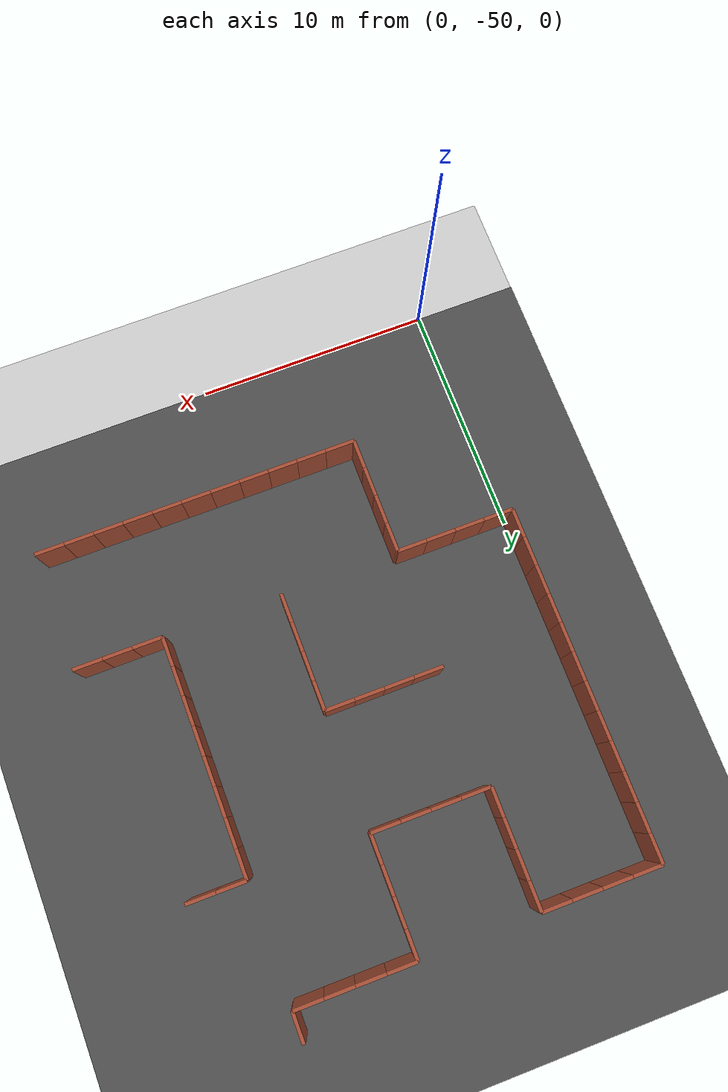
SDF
<sdf version="1.6">
 <world name="default">
  <model name="ground_plane">
   <static>1</static>
   <link name="link">
    <collision name="collision">
     <geometry><plane><normal>0 0 1</normal><size>100 100</size></plane></geometry>
     <surface><friction><ode><mu>100</mu><mu2>50</mu2></ode></friction></surface>
    </collision>
    <visual name="visual">
     <cast_shadows>0</cast_shadows>
     <geometry><plane><normal>0 0 1</normal><size>100 100</size></plane></geometry>
     <material>
      <script><uri>file://media/materials/scripts/gazebo.material</uri><name>Gazebo/Grey</name></script>
     </material>
    </visual>
   </link>
  </model>
  <model name="asphalt_plane">
   <static>1</static>
   <link name="link">
    <collision name="collision"><geometry><box><size>100 100 0.1</size></box></geometry></collision>
    <visual name="visual">
     <cast_shadows>0</cast_shadows>
     <geometry><box><size>100 100 0.1</size></box></geometry>
     <material>
      <script>
       <uri>model://asphalt_plane/materials/scripts</uri>
       <uri>model://asphalt_plane/materials/textures</uri>
       <name>vrc/asphalt</name>
      </script>
     </material>
    </visual>
   </link>
  </model>
  <model name="brick_wall_20_4_vertical1">
   <pose>0.625 -40 0 0 -0 0</pose>
   <link name="Wall_0">
    <collision name="Wall_0_Collision">
     <geometry><box><size>1.25 0.15 2</size></box></geometry>
     <pose>0 0 1 0 -0 0</pose>
    </collision>
    <visual name="Wall_0_Visual">
     <pose>0 0 1 0 -0 0</pose>
     <geometry><box><size>1.25 0.15 2</size></box></geometry>
     <material>
      <script><uri>file://media/materials/scripts/gazebo.material</uri><name>Gazebo/Bricks</name></script>
      <ambient>1 1 1 1</ambient>
     </material>
     <meta><layer>0</layer></meta>
    </visual>
   </link>
   <static>1</static>
  </model>
  <model name="brick_wall_20_4_horizontal1">
   <pose>0 -39.375 0 0 -0 1.5708</pose>
   <link name="Wall_0">
    <collision name="Wall_0_Collision">
     <geometry><box><size>1.25 0.15 2</size></box></geometry>
     <pose>0 0 1 0 -0 0</pose>
    </collision>
    <visual name="Wall_0_Visual">
     <pose>0 0 1 0 -0 0</pose>
     <geometry><box><size>1.25 0.15 2</size></box></geometry>
     <material>
      <script><uri>file://media/materials/scripts/gazebo.material</uri><name>Gazebo/Bricks</name></script>
      <ambient>1 1 1 1</ambient>
     </material>
     <meta><layer>0</layer></meta>
    </visual>
   </link>
   <static>1</static>
  </model>
  <model name="brick_wall_20_5_horizontal1">
   <pose>0 -36.875 0 0 -0 1.5708</pose>
   <link name="Wall_0">
    <collision name="Wall_0_Collision">
     <geometry><box><size>1.25 0.15 2</size></box></geometry>
     <pose>0 0 1 0 -0 0</pose>
    </collision>
    <visual name="Wall_0_Visual">
     <pose>0 0 1 0 -0 0</pose>
     <geometry><box><size>1.25 0.15 2</size></box></geometry>
     <material>
      <script><uri>file://media/materials/scripts/gazebo.material</uri><name>Gazebo/Bricks</name></script>
      <ambient>1 1 1 1</ambient>
     </material>
     <meta><layer>0</layer></meta>
    </visual>
   </link>
   <static>1</static>
  </model>
  <model name="brick_wall_20_5_horizontal2">
   <pose>0 -38.125 0 0 -0 1.5708</pose>
   <link name="Wall_0">
    <collision name="Wall_0_Collision">
     <geometry><box><size>1.25 0.15 2</size></box></geometry>
     <pose>0 0 1 0 -0 0</pose>
    </collision>
    <visual name="Wall_0_Visual">
     <pose>0 0 1 0 -0 0</pose>
     <geometry><box><size>1.25 0.15 2</size></box></geometry>
     <material>
      <script><uri>file://media/materials/scripts/gazebo.material</uri><name>Gazebo/Bricks</name></script>
      <ambient>1 1 1 1</ambient>
     </material>
     <meta><layer>0</layer></meta>
    </visual>
   </link>
   <static>1</static>
  </model>
  <model name="brick_wall_20_6_horizontal1">
   <pose>0 -34.375 0 0 -0 1.5708</pose>
   <link name="Wall_0">
    <collision name="Wall_0_Collision">
     <geometry><box><size>1.25 0.15 2</size></box></geometry>
     <pose>0 0 1 0 -0 0</pose>
    </collision>
    <visual name="Wall_0_Visual">
     <pose>0 0 1 0 -0 0</pose>
     <geometry><box><size>1.25 0.15 2</size></box></geometry>
     <material>
      <script><uri>file://media/materials/scripts/gazebo.material</uri><name>Gazebo/Bricks</name></script>
      <ambient>1 1 1 1</ambient>
     </material>
     <meta><layer>0</layer></meta>
    </visual>
   </link>
   <static>1</static>
  </model>
  <model name="brick_wall_20_6_horizontal2">
   <pose>0 -35.625 0 0 -0 1.5708</pose>
   <link name="Wall_0">
    <collision name="Wall_0_Collision">
     <geometry><box><size>1.25 0.15 2</size></box></geometry>
     <pose>0 0 1 0 -0 0</pose>
    </collision>
    <visual name="Wall_0_Visual">
     <pose>0 0 1 0 -0 0</pose>
     <geometry><box><size>1.25 0.15 2</size></box></geometry>
     <material>
      <script><uri>file://media/materials/scripts/gazebo.material</uri><name>Gazebo/Bricks</name></script>
      <ambient>1 1 1 1</ambient>
     </material>
     <meta><layer>0</layer></meta>
    </visual>
   </link>
   <static>1</static>
  </model>
  <model name="brick_wall_20_7_horizontal1">
   <pose>0 -31.875 0 0 -0 1.5708</pose>
   <link name="Wall_0">
    <collision name="Wall_0_Collision">
     <geometry><box><size>1.25 0.15 2</size></box></geometry>
     <pose>0 0 1 0 -0 0</pose>
    </collision>
    <visual name="Wall_0_Visual">
     <pose>0 0 1 0 -0 0</pose>
     <geometry><box><size>1.25 0.15 2</size></box></geometry>
     <material>
      <script><uri>file://media/materials/scripts/gazebo.material</uri><name>Gazebo/Bricks</name></script>
      <ambient>1 1 1 1</ambient>
     </material>
     <meta><layer>0</layer></meta>
    </visual>
   </link>
   <static>1</static>
  </model>
  <model name="brick_wall_20_7_horizontal2">
   <pose>0 -33.125 0 0 -0 1.5708</pose>
   <link name="Wall_0">
    <collision name="Wall_0_Collision">
     <geometry><box><size>1.25 0.15 2</size></box></geometry>
     <pose>0 0 1 0 -0 0</pose>
    </collision>
    <visual name="Wall_0_Visual">
     <pose>0 0 1 0 -0 0</pose>
     <geometry><box><size>1.25 0.15 2</size></box></geometry>
     <material>
      <script><uri>file://media/materials/scripts/gazebo.material</uri><name>Gazebo/Bricks</name></script>
      <ambient>1 1 1 1</ambient>
     </material>
     <meta><layer>0</layer></meta>
    </visual>
   </link>
   <static>1</static>
  </model>
  <model name="brick_wall_20_8_horizontal1">
   <pose>0 -29.375 0 0 -0 1.5708</pose>
   <link name="Wall_0">
    <collision name="Wall_0_Collision">
     <geometry><box><size>1.25 0.15 2</size></box></geometry>
     <pose>0 0 1 0 -0 0</pose>
    </collision>
    <visual name="Wall_0_Visual">
     <pose>0 0 1 0 -0 0</pose>
     <geometry><box><size>1.25 0.15 2</size></box></geometry>
     <material>
      <script><uri>file://media/materials/scripts/gazebo.material</uri><name>Gazebo/Bricks</name></script>
      <ambient>1 1 1 1</ambient>
     </material>
     <meta><layer>0</layer></meta>
    </visual>
   </link>
   <static>1</static>
  </model>
  <model name="brick_wall_20_8_horizontal2">
   <pose>0 -30.625 0 0 -0 1.5708</pose>
   <link name="Wall_0">
    <collision name="Wall_0_Collision">
     <geometry><box><size>1.25 0.15 2</size></box></geometry>
     <pose>0 0 1 0 -0 0</pose>
    </collision>
    <visual name="Wall_0_Visual">
     <pose>0 0 1 0 -0 0</pose>
     <geometry><box><size>1.25 0.15 2</size></box></geometry>
     <material>
      <script><uri>file://media/materials/scripts/gazebo.material</uri><name>Gazebo/Bricks</name></script>
      <ambient>1 1 1 1</ambient>
     </material>
     <meta><layer>0</layer></meta>
    </visual>
   </link>
   <static>1</static>
  </model>
  <model name="brick_wall_20_9_horizontal1">
   <pose>0 -26.875 0 0 -0 1.5708</pose>
   <link name="Wall_0">
    <collision name="Wall_0_Collision">
     <geometry><box><size>1.25 0.15 2</size></box></geometry>
     <pose>0 0 1 0 -0 0</pose>
    </collision>
    <visual name="Wall_0_Visual">
     <pose>0 0 1 0 -0 0</pose>
     <geometry><box><size>1.25 0.15 2</size></box></geometry>
     <material>
      <script><uri>file://media/materials/scripts/gazebo.material</uri><name>Gazebo/Bricks</name></script>
      <ambient>1 1 1 1</ambient>
     </material>
     <meta><layer>0</layer></meta>
    </visual>
   </link>
   <static>1</static>
  </model>
  <model name="brick_wall_20_9_horizontal2">
   <pose>0 -28.125 0 0 -0 1.5708</pose>
   <link name="Wall_0">
    <collision name="Wall_0_Collision">
     <geometry><box><size>1.25 0.15 2</size></box></geometry>
     <pose>0 0 1 0 -0 0</pose>
    </collision>
    <visual name="Wall_0_Visual">
     <pose>0 0 1 0 -0 0</pose>
     <geometry><box><size>1.25 0.15 2</size></box></geometry>
     <material>
      <script><uri>file://media/materials/scripts/gazebo.material</uri><name>Gazebo/Bricks</name></script>
      <ambient>1 1 1 1</ambient>
     </material>
     <meta><layer>0</layer></meta>
    </visual>
   </link>
   <static>1</static>
  </model>
  <model name="brick_wall_20_10_vertical1">
   <pose>0.625 -25 0 0 -0 0</pose>
   <link name="Wall_0">
    <collision name="Wall_0_Collision">
     <geometry><box><size>1.25 0.15 2</size></box></geometry>
     <pose>0 0 1 0 -0 0</pose>
    </collision>
    <visual name="Wall_0_Visual">
     <pose>0 0 1 0 -0 0</pose>
     <geometry><box><size>1.25 0.15 2</size></box></geometry>
     <material>
      <script><uri>file://media/materials/scripts/gazebo.material</uri><name>Gazebo/Bricks</name></script>
      <ambient>1 1 1 1</ambient>
     </material>
     <meta><layer>0</layer></meta>
    </visual>
   </link>
   <static>1</static>
  </model>
  <model name="brick_wall_20_10_horizontal2">
   <pose>0 -25.625 0 0 -0 1.5708</pose>
   <link name="Wall_0">
    <collision name="Wall_0_Collision">
     <geometry><box><size>1.25 0.15 2</size></box></geometry>
     <pose>0 0 1 0 -0 0</pose>
    </collision>
    <visual name="Wall_0_Visual">
     <pose>0 0 1 0 -0 0</pose>
     <geometry><box><size>1.25 0.15 2</size></box></geometry>
     <material>
      <script><uri>file://media/materials/scripts/gazebo.material</uri><name>Gazebo/Bricks</name></script>
      <ambient>1 1 1 1</ambient>
     </material>
     <meta><layer>0</layer></meta>
    </visual>
   </link>
   <static>1</static>
  </model>
  <model name="brick_wall_21_4_vertical1">
   <pose>3.125 -40 0 0 -0 0</pose>
   <link name="Wall_0">
    <collision name="Wall_0_Collision">
     <geometry><box><size>1.25 0.15 2</size></box></geometry>
     <pose>0 0 1 0 -0 0</pose>
    </collision>
    <visual name="Wall_0_Visual">
     <pose>0 0 1 0 -0 0</pose>
     <geometry><box><size>1.25 0.15 2</size></box></geometry>
     <material>
      <script><uri>file://media/materials/scripts/gazebo.material</uri><name>Gazebo/Bricks</name></script>
      <ambient>1 1 1 1</ambient>
     </material>
     <meta><layer>0</layer></meta>
    </visual>
   </link>
   <static>1</static>
  </model>
  <model name="brick_wall_21_4_vertical2">
   <pose>1.875 -40 0 0 -0 0</pose>
   <link name="Wall_0">
    <collision name="Wall_0_Collision">
     <geometry><box><size>1.25 0.15 2</size></box></geometry>
     <pose>0 0 1 0 -0 0</pose>
    </collision>
    <visual name="Wall_0_Visual">
     <pose>0 0 1 0 -0 0</pose>
     <geometry><box><size>1.25 0.15 2</size></box></geometry>
     <material>
      <script><uri>file://media/materials/scripts/gazebo.material</uri><name>Gazebo/Bricks</name></script>
      <ambient>1 1 1 1</ambient>
     </material>
     <meta><layer>0</layer></meta>
    </visual>
   </link>
   <static>1</static>
  </model>
  <model name="brick_wall_21_10_vertical1">
   <pose>3.125 -25 0 0 -0 0</pose>
   <link name="Wall_0">
    <collision name="Wall_0_Collision">
     <geometry><box><size>1.25 0.15 2</size></box></geometry>
     <pose>0 0 1 0 -0 0</pose>
    </collision>
    <visual name="Wall_0_Visual">
     <pose>0 0 1 0 -0 0</pose>
     <geometry><box><size>1.25 0.15 2</size></box></geometry>
     <material>
      <script><uri>file://media/materials/scripts/gazebo.material</uri><name>Gazebo/Bricks</name></script>
      <ambient>1 1 1 1</ambient>
     </material>
     <meta><layer>0</layer></meta>
    </visual>
   </link>
   <static>1</static>
  </model>
  <model name="brick_wall_21_10_vertical2">
   <pose>1.875 -25 0 0 -0 0</pose>
   <link name="Wall_0">
    <collision name="Wall_0_Collision">
     <geometry><box><size>1.25 0.15 2</size></box></geometry>
     <pose>0 0 1 0 -0 0</pose>
    </collision>
    <visual name="Wall_0_Visual">
     <pose>0 0 1 0 -0 0</pose>
     <geometry><box><size>1.25 0.15 2</size></box></geometry>
     <material>
      <script><uri>file://media/materials/scripts/gazebo.material</uri><name>Gazebo/Bricks</name></script>
      <ambient>1 1 1 1</ambient>
     </material>
     <meta><layer>0</layer></meta>
    </visual>
   </link>
   <static>1</static>
  </model>
  <model name="brick_wall_22_2_vertical1">
   <pose>5.625 -45 0 0 -0 0</pose>
   <link name="Wall_0">
    <collision name="Wall_0_Collision">
     <geometry><box><size>1.25 0.15 2</size></box></geometry>
     <pose>0 0 1 0 -0 0</pose>
    </collision>
    <visual name="Wall_0_Visual">
     <pose>0 0 1 0 -0 0</pose>
     <geometry><box><size>1.25 0.15 2</size></box></geometry>
     <material>
      <script><uri>file://media/materials/scripts/gazebo.material</uri><name>Gazebo/Bricks</name></script>
      <ambient>1 1 1 1</ambient>
     </material>
     <meta><layer>0</layer></meta>
    </visual>
   </link>
   <static>1</static>
  </model>
  <model name="brick_wall_22_2_horizontal1">
   <pose>5 -44.375 0 0 -0 1.5708</pose>
   <link name="Wall_0">
    <collision name="Wall_0_Collision">
     <geometry><box><size>1.25 0.15 2</size></box></geometry>
     <pose>0 0 1 0 -0 0</pose>
    </collision>
    <visual name="Wall_0_Visual">
     <pose>0 0 1 0 -0 0</pose>
     <geometry><box><size>1.25 0.15 2</size></box></geometry>
     <material>
      <script><uri>file://media/materials/scripts/gazebo.material</uri><name>Gazebo/Bricks</name></script>
      <ambient>1 1 1 1</ambient>
     </material>
     <meta><layer>0</layer></meta>
    </visual>
   </link>
   <static>1</static>
  </model>
  <model name="brick_wall_22_3_horizontal1">
   <pose>5 -41.875 0 0 -0 1.5708</pose>
   <link name="Wall_0">
    <collision name="Wall_0_Collision">
     <geometry><box><size>1.25 0.15 2</size></box></geometry>
     <pose>0 0 1 0 -0 0</pose>
    </collision>
    <visual name="Wall_0_Visual">
     <pose>0 0 1 0 -0 0</pose>
     <geometry><box><size>1.25 0.15 2</size></box></geometry>
     <material>
      <script><uri>file://media/materials/scripts/gazebo.material</uri><name>Gazebo/Bricks</name></script>
      <ambient>1 1 1 1</ambient>
     </material>
     <meta><layer>0</layer></meta>
    </visual>
   </link>
   <static>1</static>
  </model>
  <model name="brick_wall_22_3_horizontal2">
   <pose>5 -43.125 0 0 -0 1.5708</pose>
   <link name="Wall_0">
    <collision name="Wall_0_Collision">
     <geometry><box><size>1.25 0.15 2</size></box></geometry>
     <pose>0 0 1 0 -0 0</pose>
    </collision>
    <visual name="Wall_0_Visual">
     <pose>0 0 1 0 -0 0</pose>
     <geometry><box><size>1.25 0.15 2</size></box></geometry>
     <material>
      <script><uri>file://media/materials/scripts/gazebo.material</uri><name>Gazebo/Bricks</name></script>
      <ambient>1 1 1 1</ambient>
     </material>
     <meta><layer>0</layer></meta>
    </visual>
   </link>
   <static>1</static>
  </model>
  <model name="brick_wall_22_4_vertical2">
   <pose>4.375 -40 0 0 -0 0</pose>
   <link name="Wall_0">
    <collision name="Wall_0_Collision">
     <geometry><box><size>1.25 0.15 2</size></box></geometry>
     <pose>0 0 1 0 -0 0</pose>
    </collision>
    <visual name="Wall_0_Visual">
     <pose>0 0 1 0 -0 0</pose>
     <geometry><box><size>1.25 0.15 2</size></box></geometry>
     <material>
      <script><uri>file://media/materials/scripts/gazebo.material</uri><name>Gazebo/Bricks</name></script>
      <ambient>1 1 1 1</ambient>
     </material>
     <meta><layer>0</layer></meta>
    </visual>
   </link>
   <static>1</static>
  </model>
  <model name="brick_wall_22_4_horizontal2">
   <pose>5 -40.625 0 0 -0 1.5708</pose>
   <link name="Wall_0">
    <collision name="Wall_0_Collision">
     <geometry><box><size>1.25 0.15 2</size></box></geometry>
     <pose>0 0 1 0 -0 0</pose>
    </collision>
    <visual name="Wall_0_Visual">
     <pose>0 0 1 0 -0 0</pose>
     <geometry><box><size>1.25 0.15 2</size></box></geometry>
     <material>
      <script><uri>file://media/materials/scripts/gazebo.material</uri><name>Gazebo/Bricks</name></script>
      <ambient>1 1 1 1</ambient>
     </material>
     <meta><layer>0</layer></meta>
    </visual>
   </link>
   <static>1</static>
  </model>
  <model name="brick_wall_22_6_vertical1">
   <pose>5.625 -35 0 0 -0 0</pose>
   <link name="Wall_0">
    <collision name="Wall_0_Collision">
     <geometry><box><size>1.25 0.15 2</size></box></geometry>
     <pose>0 0 1 0 -0 0</pose>
    </collision>
    <visual name="Wall_0_Visual">
     <pose>0 0 1 0 -0 0</pose>
     <geometry><box><size>1.25 0.15 2</size></box></geometry>
     <material>
      <script><uri>file://media/materials/scripts/gazebo.material</uri><name>Gazebo/Bricks</name></script>
      <ambient>1 1 1 1</ambient>
     </material>
     <meta><layer>0</layer></meta>
    </visual>
   </link>
   <static>1</static>
  </model>
  <model name="brick_wall_22_8_vertical1">
   <pose>5.625 -30 0 0 -0 0</pose>
   <link name="Wall_0">
    <collision name="Wall_0_Collision">
     <geometry><box><size>1.25 0.15 2</size></box></geometry>
     <pose>0 0 1 0 -0 0</pose>
    </collision>
    <visual name="Wall_0_Visual">
     <pose>0 0 1 0 -0 0</pose>
     <geometry><box><size>1.25 0.15 2</size></box></geometry>
     <material>
      <script><uri>file://media/materials/scripts/gazebo.material</uri><name>Gazebo/Bricks</name></script>
      <ambient>1 1 1 1</ambient>
     </material>
     <meta><layer>0</layer></meta>
    </visual>
   </link>
   <static>1</static>
  </model>
  <model name="brick_wall_22_8_horizontal1">
   <pose>5 -29.375 0 0 -0 1.5708</pose>
   <link name="Wall_0">
    <collision name="Wall_0_Collision">
     <geometry><box><size>1.25 0.15 2</size></box></geometry>
     <pose>0 0 1 0 -0 0</pose>
    </collision>
    <visual name="Wall_0_Visual">
     <pose>0 0 1 0 -0 0</pose>
     <geometry><box><size>1.25 0.15 2</size></box></geometry>
     <material>
      <script><uri>file://media/materials/scripts/gazebo.material</uri><name>Gazebo/Bricks</name></script>
      <ambient>1 1 1 1</ambient>
     </material>
     <meta><layer>0</layer></meta>
    </visual>
   </link>
   <static>1</static>
  </model>
  <model name="brick_wall_22_9_horizontal1">
   <pose>5 -26.875 0 0 -0 1.5708</pose>
   <link name="Wall_0">
    <collision name="Wall_0_Collision">
     <geometry><box><size>1.25 0.15 2</size></box></geometry>
     <pose>0 0 1 0 -0 0</pose>
    </collision>
    <visual name="Wall_0_Visual">
     <pose>0 0 1 0 -0 0</pose>
     <geometry><box><size>1.25 0.15 2</size></box></geometry>
     <material>
      <script><uri>file://media/materials/scripts/gazebo.material</uri><name>Gazebo/Bricks</name></script>
      <ambient>1 1 1 1</ambient>
     </material>
     <meta><layer>0</layer></meta>
    </visual>
   </link>
   <static>1</static>
  </model>
  <model name="brick_wall_22_9_horizontal2">
   <pose>5 -28.125 0 0 -0 1.5708</pose>
   <link name="Wall_0">
    <collision name="Wall_0_Collision">
     <geometry><box><size>1.25 0.15 2</size></box></geometry>
     <pose>0 0 1 0 -0 0</pose>
    </collision>
    <visual name="Wall_0_Visual">
     <pose>0 0 1 0 -0 0</pose>
     <geometry><box><size>1.25 0.15 2</size></box></geometry>
     <material>
      <script><uri>file://media/materials/scripts/gazebo.material</uri><name>Gazebo/Bricks</name></script>
      <ambient>1 1 1 1</ambient>
     </material>
     <meta><layer>0</layer></meta>
    </visual>
   </link>
   <static>1</static>
  </model>
  <model name="brick_wall_22_10_vertical2">
   <pose>4.375 -25 0 0 -0 0</pose>
   <link name="Wall_0">
    <collision name="Wall_0_Collision">
     <geometry><box><size>1.25 0.15 2</size></box></geometry>
     <pose>0 0 1 0 -0 0</pose>
    </collision>
    <visual name="Wall_0_Visual">
     <pose>0 0 1 0 -0 0</pose>
     <geometry><box><size>1.25 0.15 2</size></box></geometry>
     <material>
      <script><uri>file://media/materials/scripts/gazebo.material</uri><name>Gazebo/Bricks</name></script>
      <ambient>1 1 1 1</ambient>
     </material>
     <meta><layer>0</layer></meta>
    </visual>
   </link>
   <static>1</static>
  </model>
  <model name="brick_wall_22_10_horizontal2">
   <pose>5 -25.625 0 0 -0 1.5708</pose>
   <link name="Wall_0">
    <collision name="Wall_0_Collision">
     <geometry><box><size>1.25 0.15 2</size></box></geometry>
     <pose>0 0 1 0 -0 0</pose>
    </collision>
    <visual name="Wall_0_Visual">
     <pose>0 0 1 0 -0 0</pose>
     <geometry><box><size>1.25 0.15 2</size></box></geometry>
     <material>
      <script><uri>file://media/materials/scripts/gazebo.material</uri><name>Gazebo/Bricks</name></script>
      <ambient>1 1 1 1</ambient>
     </material>
     <meta><layer>0</layer></meta>
    </visual>
   </link>
   <static>1</static>
  </model>
  <model name="brick_wall_23_2_vertical1">
   <pose>8.125 -45 0 0 -0 0</pose>
   <link name="Wall_0">
    <collision name="Wall_0_Collision">
     <geometry><box><size>1.25 0.15 2</size></box></geometry>
     <pose>0 0 1 0 -0 0</pose>
    </collision>
    <visual name="Wall_0_Visual">
     <pose>0 0 1 0 -0 0</pose>
     <geometry><box><size>1.25 0.15 2</size></box></geometry>
     <material>
      <script><uri>file://media/materials/scripts/gazebo.material</uri><name>Gazebo/Bricks</name></script>
      <ambient>1 1 1 1</ambient>
     </material>
     <meta><layer>0</layer></meta>
    </visual>
   </link>
   <static>1</static>
  </model>
  <model name="brick_wall_23_2_vertical2">
   <pose>6.875 -45 0 0 -0 0</pose>
   <link name="Wall_0">
    <collision name="Wall_0_Collision">
     <geometry><box><size>1.25 0.15 2</size></box></geometry>
     <pose>0 0 1 0 -0 0</pose>
    </collision>
    <visual name="Wall_0_Visual">
     <pose>0 0 1 0 -0 0</pose>
     <geometry><box><size>1.25 0.15 2</size></box></geometry>
     <material>
      <script><uri>file://media/materials/scripts/gazebo.material</uri><name>Gazebo/Bricks</name></script>
      <ambient>1 1 1 1</ambient>
     </material>
     <meta><layer>0</layer></meta>
    </visual>
   </link>
   <static>1</static>
  </model>
  <model name="brick_wall_23_6_vertical1">
   <pose>8.125 -35 0 0 -0 0</pose>
   <link name="Wall_0">
    <collision name="Wall_0_Collision">
     <geometry><box><size>1.25 0.15 2</size></box></geometry>
     <pose>0 0 1 0 -0 0</pose>
    </collision>
    <visual name="Wall_0_Visual">
     <pose>0 0 1 0 -0 0</pose>
     <geometry><box><size>1.25 0.15 2</size></box></geometry>
     <material>
      <script><uri>file://media/materials/scripts/gazebo.material</uri><name>Gazebo/Bricks</name></script>
      <ambient>1 1 1 1</ambient>
     </material>
     <meta><layer>0</layer></meta>
    </visual>
   </link>
   <static>1</static>
  </model>
  <model name="brick_wall_23_6_vertical2">
   <pose>6.875 -35 0 0 -0 0</pose>
   <link name="Wall_0">
    <collision name="Wall_0_Collision">
     <geometry><box><size>1.25 0.15 2</size></box></geometry>
     <pose>0 0 1 0 -0 0</pose>
    </collision>
    <visual name="Wall_0_Visual">
     <pose>0 0 1 0 -0 0</pose>
     <geometry><box><size>1.25 0.15 2</size></box></geometry>
     <material>
      <script><uri>file://media/materials/scripts/gazebo.material</uri><name>Gazebo/Bricks</name></script>
      <ambient>1 1 1 1</ambient>
     </material>
     <meta><layer>0</layer></meta>
    </visual>
   </link>
   <static>1</static>
  </model>
  <model name="brick_wall_23_8_vertical1">
   <pose>8.125 -30 0 0 -0 0</pose>
   <link name="Wall_0">
    <collision name="Wall_0_Collision">
     <geometry><box><size>1.25 0.15 2</size></box></geometry>
     <pose>0 0 1 0 -0 0</pose>
    </collision>
    <visual name="Wall_0_Visual">
     <pose>0 0 1 0 -0 0</pose>
     <geometry><box><size>1.25 0.15 2</size></box></geometry>
     <material>
      <script><uri>file://media/materials/scripts/gazebo.material</uri><name>Gazebo/Bricks</name></script>
      <ambient>1 1 1 1</ambient>
     </material>
     <meta><layer>0</layer></meta>
    </visual>
   </link>
   <static>1</static>
  </model>
  <model name="brick_wall_23_8_vertical2">
   <pose>6.875 -30 0 0 -0 0</pose>
   <link name="Wall_0">
    <collision name="Wall_0_Collision">
     <geometry><box><size>1.25 0.15 2</size></box></geometry>
     <pose>0 0 1 0 -0 0</pose>
    </collision>
    <visual name="Wall_0_Visual">
     <pose>0 0 1 0 -0 0</pose>
     <geometry><box><size>1.25 0.15 2</size></box></geometry>
     <material>
      <script><uri>file://media/materials/scripts/gazebo.material</uri><name>Gazebo/Bricks</name></script>
      <ambient>1 1 1 1</ambient>
     </material>
     <meta><layer>0</layer></meta>
    </visual>
   </link>
   <static>1</static>
  </model>
  <model name="brick_wall_24_2_vertical1">
   <pose>10.625 -45 0 0 -0 0</pose>
   <link name="Wall_0">
    <collision name="Wall_0_Collision">
     <geometry><box><size>1.25 0.15 2</size></box></geometry>
     <pose>0 0 1 0 -0 0</pose>
    </collision>
    <visual name="Wall_0_Visual">
     <pose>0 0 1 0 -0 0</pose>
     <geometry><box><size>1.25 0.15 2</size></box></geometry>
     <material>
      <script><uri>file://media/materials/scripts/gazebo.material</uri><name>Gazebo/Bricks</name></script>
      <ambient>1 1 1 1</ambient>
     </material>
     <meta><layer>0</layer></meta>
    </visual>
   </link>
   <static>1</static>
  </model>
  <model name="brick_wall_24_2_vertical2">
   <pose>9.375 -45 0 0 -0 0</pose>
   <link name="Wall_0">
    <collision name="Wall_0_Collision">
     <geometry><box><size>1.25 0.15 2</size></box></geometry>
     <pose>0 0 1 0 -0 0</pose>
    </collision>
    <visual name="Wall_0_Visual">
     <pose>0 0 1 0 -0 0</pose>
     <geometry><box><size>1.25 0.15 2</size></box></geometry>
     <material>
      <script><uri>file://media/materials/scripts/gazebo.material</uri><name>Gazebo/Bricks</name></script>
      <ambient>1 1 1 1</ambient>
     </material>
     <meta><layer>0</layer></meta>
    </visual>
   </link>
   <static>1</static>
  </model>
  <model name="brick_wall_24_4_horizontal1">
   <pose>10 -39.375 0 0 -0 1.5708</pose>
   <link name="Wall_0">
    <collision name="Wall_0_Collision">
     <geometry><box><size>1.25 0.15 2</size></box></geometry>
     <pose>0 0 1 0 -0 0</pose>
    </collision>
    <visual name="Wall_0_Visual">
     <pose>0 0 1 0 -0 0</pose>
     <geometry><box><size>1.25 0.15 2</size></box></geometry>
     <material>
      <script><uri>file://media/materials/scripts/gazebo.material</uri><name>Gazebo/Bricks</name></script>
      <ambient>1 1 1 1</ambient>
     </material>
     <meta><layer>0</layer></meta>
    </visual>
   </link>
   <static>1</static>
  </model>
  <model name="brick_wall_24_5_horizontal1">
   <pose>10 -36.875 0 0 -0 1.5708</pose>
   <link name="Wall_0">
    <collision name="Wall_0_Collision">
     <geometry><box><size>1.25 0.15 2</size></box></geometry>
     <pose>0 0 1 0 -0 0</pose>
    </collision>
    <visual name="Wall_0_Visual">
     <pose>0 0 1 0 -0 0</pose>
     <geometry><box><size>1.25 0.15 2</size></box></geometry>
     <material>
      <script><uri>file://media/materials/scripts/gazebo.material</uri><name>Gazebo/Bricks</name></script>
      <ambient>1 1 1 1</ambient>
     </material>
     <meta><layer>0</layer></meta>
    </visual>
   </link>
   <static>1</static>
  </model>
  <model name="brick_wall_24_5_horizontal2">
   <pose>10 -38.125 0 0 -0 1.5708</pose>
   <link name="Wall_0">
    <collision name="Wall_0_Collision">
     <geometry><box><size>1.25 0.15 2</size></box></geometry>
     <pose>0 0 1 0 -0 0</pose>
    </collision>
    <visual name="Wall_0_Visual">
     <pose>0 0 1 0 -0 0</pose>
     <geometry><box><size>1.25 0.15 2</size></box></geometry>
     <material>
      <script><uri>file://media/materials/scripts/gazebo.material</uri><name>Gazebo/Bricks</name></script>
      <ambient>1 1 1 1</ambient>
     </material>
     <meta><layer>0</layer></meta>
    </visual>
   </link>
   <static>1</static>
  </model>
  <model name="brick_wall_24_6_vertical2">
   <pose>9.375 -35 0 0 -0 0</pose>
   <link name="Wall_0">
    <collision name="Wall_0_Collision">
     <geometry><box><size>1.25 0.15 2</size></box></geometry>
     <pose>0 0 1 0 -0 0</pose>
    </collision>
    <visual name="Wall_0_Visual">
     <pose>0 0 1 0 -0 0</pose>
     <geometry><box><size>1.25 0.15 2</size></box></geometry>
     <material>
      <script><uri>file://media/materials/scripts/gazebo.material</uri><name>Gazebo/Bricks</name></script>
      <ambient>1 1 1 1</ambient>
     </material>
     <meta><layer>0</layer></meta>
    </visual>
   </link>
   <static>1</static>
  </model>
  <model name="brick_wall_24_6_horizontal2">
   <pose>10 -35.625 0 0 -0 1.5708</pose>
   <link name="Wall_0">
    <collision name="Wall_0_Collision">
     <geometry><box><size>1.25 0.15 2</size></box></geometry>
     <pose>0 0 1 0 -0 0</pose>
    </collision>
    <visual name="Wall_0_Visual">
     <pose>0 0 1 0 -0 0</pose>
     <geometry><box><size>1.25 0.15 2</size></box></geometry>
     <material>
      <script><uri>file://media/materials/scripts/gazebo.material</uri><name>Gazebo/Bricks</name></script>
      <ambient>1 1 1 1</ambient>
     </material>
     <meta><layer>0</layer></meta>
    </visual>
   </link>
   <static>1</static>
  </model>
  <model name="brick_wall_24_8_vertical2">
   <pose>9.375 -30 0 0 -0 0</pose>
   <link name="Wall_0">
    <collision name="Wall_0_Collision">
     <geometry><box><size>1.25 0.15 2</size></box></geometry>
     <pose>0 0 1 0 -0 0</pose>
    </collision>
    <visual name="Wall_0_Visual">
     <pose>0 0 1 0 -0 0</pose>
     <geometry><box><size>1.25 0.15 2</size></box></geometry>
     <material>
      <script><uri>file://media/materials/scripts/gazebo.material</uri><name>Gazebo/Bricks</name></script>
      <ambient>1 1 1 1</ambient>
     </material>
     <meta><layer>0</layer></meta>
    </visual>
   </link>
   <static>1</static>
  </model>
  <model name="brick_wall_24_8_horizontal1">
   <pose>10 -29.375 0 0 -0 1.5708</pose>
   <link name="Wall_0">
    <collision name="Wall_0_Collision">
     <geometry><box><size>1.25 0.15 2</size></box></geometry>
     <pose>0 0 1 0 -0 0</pose>
    </collision>
    <visual name="Wall_0_Visual">
     <pose>0 0 1 0 -0 0</pose>
     <geometry><box><size>1.25 0.15 2</size></box></geometry>
     <material>
      <script><uri>file://media/materials/scripts/gazebo.material</uri><name>Gazebo/Bricks</name></script>
      <ambient>1 1 1 1</ambient>
     </material>
     <meta><layer>0</layer></meta>
    </visual>
   </link>
   <static>1</static>
  </model>
  <model name="brick_wall_24_9_horizontal1">
   <pose>10 -26.875 0 0 -0 1.5708</pose>
   <link name="Wall_0">
    <collision name="Wall_0_Collision">
     <geometry><box><size>1.25 0.15 2</size></box></geometry>
     <pose>0 0 1 0 -0 0</pose>
    </collision>
    <visual name="Wall_0_Visual">
     <pose>0 0 1 0 -0 0</pose>
     <geometry><box><size>1.25 0.15 2</size></box></geometry>
     <material>
      <script><uri>file://media/materials/scripts/gazebo.material</uri><name>Gazebo/Bricks</name></script>
      <ambient>1 1 1 1</ambient>
     </material>
     <meta><layer>0</layer></meta>
    </visual>
   </link>
   <static>1</static>
  </model>
  <model name="brick_wall_24_9_horizontal2">
   <pose>10 -28.125 0 0 -0 1.5708</pose>
   <link name="Wall_0">
    <collision name="Wall_0_Collision">
     <geometry><box><size>1.25 0.15 2</size></box></geometry>
     <pose>0 0 1 0 -0 0</pose>
    </collision>
    <visual name="Wall_0_Visual">
     <pose>0 0 1 0 -0 0</pose>
     <geometry><box><size>1.25 0.15 2</size></box></geometry>
     <material>
      <script><uri>file://media/materials/scripts/gazebo.material</uri><name>Gazebo/Bricks</name></script>
      <ambient>1 1 1 1</ambient>
     </material>
     <meta><layer>0</layer></meta>
    </visual>
   </link>
   <static>1</static>
  </model>
  <model name="brick_wall_24_10_vertical1">
   <pose>10.625 -25 0 0 -0 0</pose>
   <link name="Wall_0">
    <collision name="Wall_0_Collision">
     <geometry><box><size>1.25 0.15 2</size></box></geometry>
     <pose>0 0 1 0 -0 0</pose>
    </collision>
    <visual name="Wall_0_Visual">
     <pose>0 0 1 0 -0 0</pose>
     <geometry><box><size>1.25 0.15 2</size></box></geometry>
     <material>
      <script><uri>file://media/materials/scripts/gazebo.material</uri><name>Gazebo/Bricks</name></script>
      <ambient>1 1 1 1</ambient>
     </material>
     <meta><layer>0</layer></meta>
    </visual>
   </link>
   <static>1</static>
  </model>
  <model name="brick_wall_24_10_horizontal2">
   <pose>10 -25.625 0 0 -0 1.5708</pose>
   <link name="Wall_0">
    <collision name="Wall_0_Collision">
     <geometry><box><size>1.25 0.15 2</size></box></geometry>
     <pose>0 0 1 0 -0 0</pose>
    </collision>
    <visual name="Wall_0_Visual">
     <pose>0 0 1 0 -0 0</pose>
     <geometry><box><size>1.25 0.15 2</size></box></geometry>
     <material>
      <script><uri>file://media/materials/scripts/gazebo.material</uri><name>Gazebo/Bricks</name></script>
      <ambient>1 1 1 1</ambient>
     </material>
     <meta><layer>0</layer></meta>
    </visual>
   </link>
   <static>1</static>
  </model>
  <model name="brick_wall_25_2_vertical1">
   <pose>13.125 -45 0 0 -0 0</pose>
   <link name="Wall_0">
    <collision name="Wall_0_Collision">
     <geometry><box><size>1.25 0.15 2</size></box></geometry>
     <pose>0 0 1 0 -0 0</pose>
    </collision>
    <visual name="Wall_0_Visual">
     <pose>0 0 1 0 -0 0</pose>
     <geometry><box><size>1.25 0.15 2</size></box></geometry>
     <material>
      <script><uri>file://media/materials/scripts/gazebo.material</uri><name>Gazebo/Bricks</name></script>
      <ambient>1 1 1 1</ambient>
     </material>
     <meta><layer>0</layer></meta>
    </visual>
   </link>
   <static>1</static>
  </model>
  <model name="brick_wall_25_2_vertical2">
   <pose>11.875 -45 0 0 -0 0</pose>
   <link name="Wall_0">
    <collision name="Wall_0_Collision">
     <geometry><box><size>1.25 0.15 2</size></box></geometry>
     <pose>0 0 1 0 -0 0</pose>
    </collision>
    <visual name="Wall_0_Visual">
     <pose>0 0 1 0 -0 0</pose>
     <geometry><box><size>1.25 0.15 2</size></box></geometry>
     <material>
      <script><uri>file://media/materials/scripts/gazebo.material</uri><name>Gazebo/Bricks</name></script>
      <ambient>1 1 1 1</ambient>
     </material>
     <meta><layer>0</layer></meta>
    </visual>
   </link>
   <static>1</static>
  </model>
  <model name="brick_wall_25_10_vertical1">
   <pose>13.125 -25 0 0 -0 0</pose>
   <link name="Wall_0">
    <collision name="Wall_0_Collision">
     <geometry><box><size>1.25 0.15 2</size></box></geometry>
     <pose>0 0 1 0 -0 0</pose>
    </collision>
    <visual name="Wall_0_Visual">
     <pose>0 0 1 0 -0 0</pose>
     <geometry><box><size>1.25 0.15 2</size></box></geometry>
     <material>
      <script><uri>file://media/materials/scripts/gazebo.material</uri><name>Gazebo/Bricks</name></script>
      <ambient>1 1 1 1</ambient>
     </material>
     <meta><layer>0</layer></meta>
    </visual>
   </link>
   <static>1</static>
  </model>
  <model name="brick_wall_25_10_vertical2">
   <pose>11.875 -25 0 0 -0 0</pose>
   <link name="Wall_0">
    <collision name="Wall_0_Collision">
     <geometry><box><size>1.25 0.15 2</size></box></geometry>
     <pose>0 0 1 0 -0 0</pose>
    </collision>
    <visual name="Wall_0_Visual">
     <pose>0 0 1 0 -0 0</pose>
     <geometry><box><size>1.25 0.15 2</size></box></geometry>
     <material>
      <script><uri>file://media/materials/scripts/gazebo.material</uri><name>Gazebo/Bricks</name></script>
      <ambient>1 1 1 1</ambient>
     </material>
     <meta><layer>0</layer></meta>
    </visual>
   </link>
   <static>1</static>
  </model>
  <model name="brick_wall_26_2_vertical1">
   <pose>15.625 -45 0 0 -0 0</pose>
   <link name="Wall_0">
    <collision name="Wall_0_Collision">
     <geometry><box><size>1.25 0.15 2</size></box></geometry>
     <pose>0 0 1 0 -0 0</pose>
    </collision>
    <visual name="Wall_0_Visual">
     <pose>0 0 1 0 -0 0</pose>
     <geometry><box><size>1.25 0.15 2</size></box></geometry>
     <material>
      <script><uri>file://media/materials/scripts/gazebo.material</uri><name>Gazebo/Bricks</name></script>
      <ambient>1 1 1 1</ambient>
     </material>
     <meta><layer>0</layer></meta>
    </visual>
   </link>
   <static>1</static>
  </model>
  <model name="brick_wall_26_2_vertical2">
   <pose>14.375 -45 0 0 -0 0</pose>
   <link name="Wall_0">
    <collision name="Wall_0_Collision">
     <geometry><box><size>1.25 0.15 2</size></box></geometry>
     <pose>0 0 1 0 -0 0</pose>
    </collision>
    <visual name="Wall_0_Visual">
     <pose>0 0 1 0 -0 0</pose>
     <geometry><box><size>1.25 0.15 2</size></box></geometry>
     <material>
      <script><uri>file://media/materials/scripts/gazebo.material</uri><name>Gazebo/Bricks</name></script>
      <ambient>1 1 1 1</ambient>
     </material>
     <meta><layer>0</layer></meta>
    </visual>
   </link>
   <static>1</static>
  </model>
  <model name="brick_wall_26_4_vertical1">
   <pose>15.625 -40 0 0 -0 0</pose>
   <link name="Wall_0">
    <collision name="Wall_0_Collision">
     <geometry><box><size>1.25 0.15 2</size></box></geometry>
     <pose>0 0 1 0 -0 0</pose>
    </collision>
    <visual name="Wall_0_Visual">
     <pose>0 0 1 0 -0 0</pose>
     <geometry><box><size>1.25 0.15 2</size></box></geometry>
     <material>
      <script><uri>file://media/materials/scripts/gazebo.material</uri><name>Gazebo/Bricks</name></script>
      <ambient>1 1 1 1</ambient>
     </material>
     <meta><layer>0</layer></meta>
    </visual>
   </link>
   <static>1</static>
  </model>
  <model name="brick_wall_26_4_horizontal1">
   <pose>15 -39.375 0 0 -0 1.5708</pose>
   <link name="Wall_0">
    <collision name="Wall_0_Collision">
     <geometry><box><size>1.25 0.15 2</size></box></geometry>
     <pose>0 0 1 0 -0 0</pose>
    </collision>
    <visual name="Wall_0_Visual">
     <pose>0 0 1 0 -0 0</pose>
     <geometry><box><size>1.25 0.15 2</size></box></geometry>
     <material>
      <script><uri>file://media/materials/scripts/gazebo.material</uri><name>Gazebo/Bricks</name></script>
      <ambient>1 1 1 1</ambient>
     </material>
     <meta><layer>0</layer></meta>
    </visual>
   </link>
   <static>1</static>
  </model>
  <model name="brick_wall_26_5_horizontal1">
   <pose>15 -36.875 0 0 -0 1.5708</pose>
   <link name="Wall_0">
    <collision name="Wall_0_Collision">
     <geometry><box><size>1.25 0.15 2</size></box></geometry>
     <pose>0 0 1 0 -0 0</pose>
    </collision>
    <visual name="Wall_0_Visual">
     <pose>0 0 1 0 -0 0</pose>
     <geometry><box><size>1.25 0.15 2</size></box></geometry>
     <material>
      <script><uri>file://media/materials/scripts/gazebo.material</uri><name>Gazebo/Bricks</name></script>
      <ambient>1 1 1 1</ambient>
     </material>
     <meta><layer>0</layer></meta>
    </visual>
   </link>
   <static>1</static>
  </model>
  <model name="brick_wall_26_5_horizontal2">
   <pose>15 -38.125 0 0 -0 1.5708</pose>
   <link name="Wall_0">
    <collision name="Wall_0_Collision">
     <geometry><box><size>1.25 0.15 2</size></box></geometry>
     <pose>0 0 1 0 -0 0</pose>
    </collision>
    <visual name="Wall_0_Visual">
     <pose>0 0 1 0 -0 0</pose>
     <geometry><box><size>1.25 0.15 2</size></box></geometry>
     <material>
      <script><uri>file://media/materials/scripts/gazebo.material</uri><name>Gazebo/Bricks</name></script>
      <ambient>1 1 1 1</ambient>
     </material>
     <meta><layer>0</layer></meta>
    </visual>
   </link>
   <static>1</static>
  </model>
  <model name="brick_wall_26_6_horizontal1">
   <pose>15 -34.375 0 0 -0 1.5708</pose>
   <link name="Wall_0">
    <collision name="Wall_0_Collision">
     <geometry><box><size>1.25 0.15 2</size></box></geometry>
     <pose>0 0 1 0 -0 0</pose>
    </collision>
    <visual name="Wall_0_Visual">
     <pose>0 0 1 0 -0 0</pose>
     <geometry><box><size>1.25 0.15 2</size></box></geometry>
     <material>
      <script><uri>file://media/materials/scripts/gazebo.material</uri><name>Gazebo/Bricks</name></script>
      <ambient>1 1 1 1</ambient>
     </material>
     <meta><layer>0</layer></meta>
    </visual>
   </link>
   <static>1</static>
  </model>
  <model name="brick_wall_26_6_horizontal2">
   <pose>15 -35.625 0 0 -0 1.5708</pose>
   <link name="Wall_0">
    <collision name="Wall_0_Collision">
     <geometry><box><size>1.25 0.15 2</size></box></geometry>
     <pose>0 0 1 0 -0 0</pose>
    </collision>
    <visual name="Wall_0_Visual">
     <pose>0 0 1 0 -0 0</pose>
     <geometry><box><size>1.25 0.15 2</size></box></geometry>
     <material>
      <script><uri>file://media/materials/scripts/gazebo.material</uri><name>Gazebo/Bricks</name></script>
      <ambient>1 1 1 1</ambient>
     </material>
     <meta><layer>0</layer></meta>
    </visual>
   </link>
   <static>1</static>
  </model>
  <model name="brick_wall_26_7_horizontal1">
   <pose>15 -31.875 0 0 -0 1.5708</pose>
   <link name="Wall_0">
    <collision name="Wall_0_Collision">
     <geometry><box><size>1.25 0.15 2</size></box></geometry>
     <pose>0 0 1 0 -0 0</pose>
    </collision>
    <visual name="Wall_0_Visual">
     <pose>0 0 1 0 -0 0</pose>
     <geometry><box><size>1.25 0.15 2</size></box></geometry>
     <material>
      <script><uri>file://media/materials/scripts/gazebo.material</uri><name>Gazebo/Bricks</name></script>
      <ambient>1 1 1 1</ambient>
     </material>
     <meta><layer>0</layer></meta>
    </visual>
   </link>
   <static>1</static>
  </model>
  <model name="brick_wall_26_7_horizontal2">
   <pose>15 -33.125 0 0 -0 1.5708</pose>
   <link name="Wall_0">
    <collision name="Wall_0_Collision">
     <geometry><box><size>1.25 0.15 2</size></box></geometry>
     <pose>0 0 1 0 -0 0</pose>
    </collision>
    <visual name="Wall_0_Visual">
     <pose>0 0 1 0 -0 0</pose>
     <geometry><box><size>1.25 0.15 2</size></box></geometry>
     <material>
      <script><uri>file://media/materials/scripts/gazebo.material</uri><name>Gazebo/Bricks</name></script>
      <ambient>1 1 1 1</ambient>
     </material>
     <meta><layer>0</layer></meta>
    </visual>
   </link>
   <static>1</static>
  </model>
  <model name="brick_wall_26_8_vertical1">
   <pose>15.625 -30 0 0 -0 0</pose>
   <link name="Wall_0">
    <collision name="Wall_0_Collision">
     <geometry><box><size>1.25 0.15 2</size></box></geometry>
     <pose>0 0 1 0 -0 0</pose>
    </collision>
    <visual name="Wall_0_Visual">
     <pose>0 0 1 0 -0 0</pose>
     <geometry><box><size>1.25 0.15 2</size></box></geometry>
     <material>
      <script><uri>file://media/materials/scripts/gazebo.material</uri><name>Gazebo/Bricks</name></script>
      <ambient>1 1 1 1</ambient>
     </material>
     <meta><layer>0</layer></meta>
    </visual>
   </link>
   <static>1</static>
  </model>
  <model name="brick_wall_26_8_horizontal2">
   <pose>15 -30.625 0 0 -0 1.5708</pose>
   <link name="Wall_0">
    <collision name="Wall_0_Collision">
     <geometry><box><size>1.25 0.15 2</size></box></geometry>
     <pose>0 0 1 0 -0 0</pose>
    </collision>
    <visual name="Wall_0_Visual">
     <pose>0 0 1 0 -0 0</pose>
     <geometry><box><size>1.25 0.15 2</size></box></geometry>
     <material>
      <script><uri>file://media/materials/scripts/gazebo.material</uri><name>Gazebo/Bricks</name></script>
      <ambient>1 1 1 1</ambient>
     </material>
     <meta><layer>0</layer></meta>
    </visual>
   </link>
   <static>1</static>
  </model>
  <model name="brick_wall_26_10_vertical2">
   <pose>14.375 -25 0 0 -0 0</pose>
   <link name="Wall_0">
    <collision name="Wall_0_Collision">
     <geometry><box><size>1.25 0.15 2</size></box></geometry>
     <pose>0 0 1 0 -0 0</pose>
    </collision>
    <visual name="Wall_0_Visual">
     <pose>0 0 1 0 -0 0</pose>
     <geometry><box><size>1.25 0.15 2</size></box></geometry>
     <material>
      <script><uri>file://media/materials/scripts/gazebo.material</uri><name>Gazebo/Bricks</name></script>
      <ambient>1 1 1 1</ambient>
     </material>
     <meta><layer>0</layer></meta>
    </visual>
   </link>
   <static>1</static>
  </model>
  <model name="brick_wall_26_10_horizontal1">
   <pose>15 -24.375 0 0 -0 1.5708</pose>
   <link name="Wall_0">
    <collision name="Wall_0_Collision">
     <geometry><box><size>1.25 0.15 2</size></box></geometry>
     <pose>0 0 1 0 -0 0</pose>
    </collision>
    <visual name="Wall_0_Visual">
     <pose>0 0 1 0 -0 0</pose>
     <geometry><box><size>1.25 0.15 2</size></box></geometry>
     <material>
      <script><uri>file://media/materials/scripts/gazebo.material</uri><name>Gazebo/Bricks</name></script>
      <ambient>1 1 1 1</ambient>
     </material>
     <meta><layer>0</layer></meta>
    </visual>
   </link>
   <static>1</static>
  </model>
  <model name="brick_wall_27_2_vertical1">
   <pose>18.125 -45 0 0 -0 0</pose>
   <link name="Wall_0">
    <collision name="Wall_0_Collision">
     <geometry><box><size>1.25 0.15 2</size></box></geometry>
     <pose>0 0 1 0 -0 0</pose>
    </collision>
    <visual name="Wall_0_Visual">
     <pose>0 0 1 0 -0 0</pose>
     <geometry><box><size>1.25 0.15 2</size></box></geometry>
     <material>
      <script><uri>file://media/materials/scripts/gazebo.material</uri><name>Gazebo/Bricks</name></script>
      <ambient>1 1 1 1</ambient>
     </material>
     <meta><layer>0</layer></meta>
    </visual>
   </link>
   <static>1</static>
  </model>
  <model name="brick_wall_27_2_vertical2">
   <pose>16.875 -45 0 0 -0 0</pose>
   <link name="Wall_0">
    <collision name="Wall_0_Collision">
     <geometry><box><size>1.25 0.15 2</size></box></geometry>
     <pose>0 0 1 0 -0 0</pose>
    </collision>
    <visual name="Wall_0_Visual">
     <pose>0 0 1 0 -0 0</pose>
     <geometry><box><size>1.25 0.15 2</size></box></geometry>
     <material>
      <script><uri>file://media/materials/scripts/gazebo.material</uri><name>Gazebo/Bricks</name></script>
      <ambient>1 1 1 1</ambient>
     </material>
     <meta><layer>0</layer></meta>
    </visual>
   </link>
   <static>1</static>
  </model>
  <model name="brick_wall_27_4_vertical1">
   <pose>18.125 -40 0 0 -0 0</pose>
   <link name="Wall_0">
    <collision name="Wall_0_Collision">
     <geometry><box><size>1.25 0.15 2</size></box></geometry>
     <pose>0 0 1 0 -0 0</pose>
    </collision>
    <visual name="Wall_0_Visual">
     <pose>0 0 1 0 -0 0</pose>
     <geometry><box><size>1.25 0.15 2</size></box></geometry>
     <material>
      <script><uri>file://media/materials/scripts/gazebo.material</uri><name>Gazebo/Bricks</name></script>
      <ambient>1 1 1 1</ambient>
     </material>
     <meta><layer>0</layer></meta>
    </visual>
   </link>
   <static>1</static>
  </model>
  <model name="brick_wall_27_4_vertical2">
   <pose>16.875 -40 0 0 -0 0</pose>
   <link name="Wall_0">
    <collision name="Wall_0_Collision">
     <geometry><box><size>1.25 0.15 2</size></box></geometry>
     <pose>0 0 1 0 -0 0</pose>
    </collision>
    <visual name="Wall_0_Visual">
     <pose>0 0 1 0 -0 0</pose>
     <geometry><box><size>1.25 0.15 2</size></box></geometry>
     <material>
      <script><uri>file://media/materials/scripts/gazebo.material</uri><name>Gazebo/Bricks</name></script>
      <ambient>1 1 1 1</ambient>
     </material>
     <meta><layer>0</layer></meta>
    </visual>
   </link>
   <static>1</static>
  </model>
  <model name="brick_wall_27_8_vertical2">
   <pose>16.875 -30 0 0 -0 0</pose>
   <link name="Wall_0">
    <collision name="Wall_0_Collision">
     <geometry><box><size>1.25 0.15 2</size></box></geometry>
     <pose>0 0 1 0 -0 0</pose>
    </collision>
    <visual name="Wall_0_Visual">
     <pose>0 0 1 0 -0 0</pose>
     <geometry><box><size>1.25 0.15 2</size></box></geometry>
     <material>
      <script><uri>file://media/materials/scripts/gazebo.material</uri><name>Gazebo/Bricks</name></script>
      <ambient>1 1 1 1</ambient>
     </material>
     <meta><layer>0</layer></meta>
    </visual>
   </link>
   <static>1</static>
  </model>
 </world>
</sdf>
